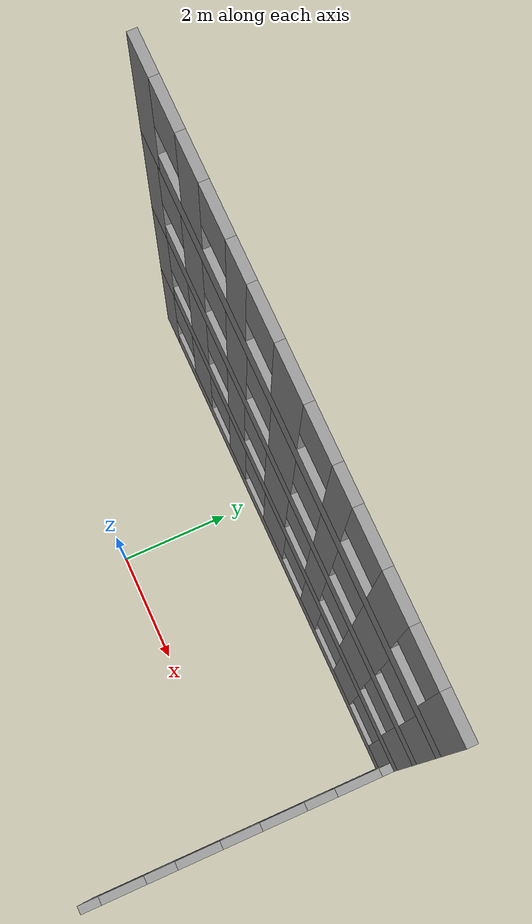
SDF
<sdf version="1.7">
 <model name="domitory">
  <pose>0.765108 -0.598707 0 0 -0 0</pose>
  <link name="Wall_11">
   <pose>-0 3.29118 2.5 0 -0 0</pose>
   <visual name="Wall_11_Visual_0">
    <pose>-4.4928 0 1.25 0 -0 0</pose>
    <geometry><box><size>0.612127 0.15 2.5</size></box></geometry>
    <material>
     <script><uri>file://media/materials/scripts/gazebo.material</uri><name>Gazebo/Grey</name></script>
     <ambient>1 1 1 1</ambient>
    </material>
    <meta><layer>1</layer></meta>
   </visual>
   <collision name="Wall_11_Collision_0">
    <geometry><box><size>0.612127 0.15 2.5</size></box></geometry>
    <pose>-4.4928 0 1.25 0 -0 0</pose>
   </collision>
   <visual name="Wall_11_Visual_1">
    <pose>0.306063 0 0.25 0 -0 0</pose>
    <geometry><box><size>8.9856 0.15 0.5</size></box></geometry>
    <material>
     <script><uri>file://media/materials/scripts/gazebo.material</uri><name>Gazebo/Grey</name></script>
     <ambient>1 1 1 1</ambient>
    </material>
    <meta><layer>1</layer></meta>
   </visual>
   <collision name="Wall_11_Collision_1">
    <geometry><box><size>8.9856 0.15 0.5</size></box></geometry>
    <pose>0.306063 0 0.25 0 -0 0</pose>
   </collision>
   <visual name="Wall_11_Visual_2">
    <pose>-3.02592 0 1.5 0 -0 0</pose>
    <geometry><box><size>0.721636 0.15 2</size></box></geometry>
    <material>
     <script><uri>file://media/materials/scripts/gazebo.material</uri><name>Gazebo/Grey</name></script>
     <ambient>1 1 1 1</ambient>
    </material>
    <meta><layer>1</layer></meta>
   </visual>
   <collision name="Wall_11_Collision_2">
    <geometry><box><size>0.721636 0.15 2</size></box></geometry>
    <pose>-3.02592 0 1.5 0 -0 0</pose>
   </collision>
   <visual name="Wall_11_Visual_3">
    <pose>-1.53052 0 1.5 0 -0 0</pose>
    <geometry><box><size>0.669165 0.15 2</size></box></geometry>
    <material>
     <script><uri>file://media/materials/scripts/gazebo.material</uri><name>Gazebo/Grey</name></script>
     <ambient>1 1 1 1</ambient>
    </material>
    <meta><layer>1</layer></meta>
   </visual>
   <collision name="Wall_11_Collision_3">
    <geometry><box><size>0.669165 0.15 2</size></box></geometry>
    <pose>-1.53052 0 1.5 0 -0 0</pose>
   </collision>
   <visual name="Wall_11_Visual_4">
    <pose>0.017351 0 1.5 0 -0 0</pose>
    <geometry><box><size>0.826576 0.15 2</size></box></geometry>
    <material>
     <script><uri>file://media/materials/scripts/gazebo.material</uri><name>Gazebo/Grey</name></script>
     <ambient>1 1 1 1</ambient>
    </material>
    <meta><layer>1</layer></meta>
   </visual>
   <collision name="Wall_11_Collision_4">
    <geometry><box><size>0.826576 0.15 2</size></box></geometry>
    <pose>0.017351 0 1.5 0 -0 0</pose>
   </collision>
   <visual name="Wall_11_Visual_5">
    <pose>1.51275 0 1.5 0 -0 0</pose>
    <geometry><box><size>0.564225 0.15 2</size></box></geometry>
    <material>
     <script><uri>file://media/materials/scripts/gazebo.material</uri><name>Gazebo/Grey</name></script>
     <ambient>1 1 1 1</ambient>
    </material>
    <meta><layer>1</layer></meta>
   </visual>
   <collision name="Wall_11_Collision_5">
    <geometry><box><size>0.564225 0.15 2</size></box></geometry>
    <pose>1.51275 0 1.5 0 -0 0</pose>
   </collision>
   <visual name="Wall_11_Visual_6">
    <pose>2.99066 0 1.5 0 -0 0</pose>
    <geometry><box><size>0.791596 0.15 2</size></box></geometry>
    <material>
     <script><uri>file://media/materials/scripts/gazebo.material</uri><name>Gazebo/Grey</name></script>
     <ambient>1 1 1 1</ambient>
    </material>
    <meta><layer>1</layer></meta>
   </visual>
   <collision name="Wall_11_Collision_6">
    <geometry><box><size>0.791596 0.15 2</size></box></geometry>
    <pose>2.99066 0 1.5 0 -0 0</pose>
   </collision>
   <visual name="Wall_11_Visual_7">
    <pose>4.49266 0 1.5 0 -0 0</pose>
    <geometry><box><size>0.612404 0.15 2</size></box></geometry>
    <material>
     <script><uri>file://media/materials/scripts/gazebo.material</uri><name>Gazebo/Grey</name></script>
     <ambient>1 1 1 1</ambient>
    </material>
    <meta><layer>1</layer></meta>
   </visual>
   <collision name="Wall_11_Collision_7">
    <geometry><box><size>0.612404 0.15 2</size></box></geometry>
    <pose>4.49266 0 1.5 0 -0 0</pose>
   </collision>
   <visual name="Wall_11_Visual_8">
    <pose>-3.78674 0 1.9 0 -0 0</pose>
    <geometry><box><size>0.8 0.15 1.2</size></box></geometry>
    <material>
     <script><uri>file://media/materials/scripts/gazebo.material</uri><name>Gazebo/Grey</name></script>
     <ambient>1 1 1 1</ambient>
    </material>
    <meta><layer>1</layer></meta>
   </visual>
   <collision name="Wall_11_Collision_8">
    <geometry><box><size>0.8 0.15 1.2</size></box></geometry>
    <pose>-3.78674 0 1.9 0 -0 0</pose>
   </collision>
   <visual name="Wall_11_Visual_9">
    <pose>-2.2651 0 1.9 0 -0 0</pose>
    <geometry><box><size>0.8 0.15 1.2</size></box></geometry>
    <material>
     <script><uri>file://media/materials/scripts/gazebo.material</uri><name>Gazebo/Grey</name></script>
     <ambient>1 1 1 1</ambient>
    </material>
    <meta><layer>1</layer></meta>
   </visual>
   <collision name="Wall_11_Collision_9">
    <geometry><box><size>0.8 0.15 1.2</size></box></geometry>
    <pose>-2.2651 0 1.9 0 -0 0</pose>
   </collision>
   <visual name="Wall_11_Visual_10">
    <pose>-0.795937 0 1.9 0 -0 0</pose>
    <geometry><box><size>0.8 0.15 1.2</size></box></geometry>
    <material>
     <script><uri>file://media/materials/scripts/gazebo.material</uri><name>Gazebo/Grey</name></script>
     <ambient>1 1 1 1</ambient>
    </material>
    <meta><layer>1</layer></meta>
   </visual>
   <collision name="Wall_11_Collision_10">
    <geometry><box><size>0.8 0.15 1.2</size></box></geometry>
    <pose>-0.795937 0 1.9 0 -0 0</pose>
   </collision>
   <visual name="Wall_11_Visual_11">
    <pose>0.830639 0 1.9 0 -0 0</pose>
    <geometry><box><size>0.8 0.15 1.2</size></box></geometry>
    <material>
     <script><uri>file://media/materials/scripts/gazebo.material</uri><name>Gazebo/Grey</name></script>
     <ambient>1 1 1 1</ambient>
    </material>
    <meta><layer>1</layer></meta>
   </visual>
   <collision name="Wall_11_Collision_11">
    <geometry><box><size>0.8 0.15 1.2</size></box></geometry>
    <pose>0.830639 0 1.9 0 -0 0</pose>
   </collision>
   <visual name="Wall_11_Visual_12">
    <pose>2.19486 0 1.9 0 -0 0</pose>
    <geometry><box><size>0.8 0.15 1.2</size></box></geometry>
    <material>
     <script><uri>file://media/materials/scripts/gazebo.material</uri><name>Gazebo/Grey</name></script>
     <ambient>1 1 1 1</ambient>
    </material>
    <meta><layer>1</layer></meta>
   </visual>
   <collision name="Wall_11_Collision_12">
    <geometry><box><size>0.8 0.15 1.2</size></box></geometry>
    <pose>2.19486 0 1.9 0 -0 0</pose>
   </collision>
   <visual name="Wall_11_Visual_13">
    <pose>3.78646 0 1.9 0 -0 0</pose>
    <geometry><box><size>0.8 0.15 1.2</size></box></geometry>
    <material>
     <script><uri>file://media/materials/scripts/gazebo.material</uri><name>Gazebo/Grey</name></script>
     <ambient>1 1 1 1</ambient>
    </material>
    <meta><layer>1</layer></meta>
   </visual>
   <collision name="Wall_11_Collision_13">
    <geometry><box><size>0.8 0.15 1.2</size></box></geometry>
    <pose>3.78646 0 1.9 0 -0 0</pose>
   </collision>
  </link>
  <link name="Wall_16">
   <pose>-0 3.29118 5 0 -0 0</pose>
   <visual name="Wall_16_Visual_0">
    <pose>-4.50103 0 1.25 0 -0 0</pose>
    <geometry><box><size>0.595673 0.15 2.5</size></box></geometry>
    <material>
     <script><uri>file://media/materials/scripts/gazebo.material</uri><name>Gazebo/Grey</name></script>
     <ambient>1 1 1 1</ambient>
    </material>
    <meta><layer>2</layer></meta>
   </visual>
   <collision name="Wall_16_Collision_0">
    <geometry><box><size>0.595673 0.15 2.5</size></box></geometry>
    <pose>-4.50103 0 1.25 0 -0 0</pose>
   </collision>
   <visual name="Wall_16_Visual_1">
    <pose>0.297837 0 0.25 0 -0 0</pose>
    <geometry><box><size>9.00206 0.15 0.5</size></box></geometry>
    <material>
     <script><uri>file://media/materials/scripts/gazebo.material</uri><name>Gazebo/Grey</name></script>
     <ambient>1 1 1 1</ambient>
    </material>
    <meta><layer>2</layer></meta>
   </visual>
   <collision name="Wall_16_Collision_1">
    <geometry><box><size>9.00206 0.15 0.5</size></box></geometry>
    <pose>0.297837 0 0.25 0 -0 0</pose>
   </collision>
   <visual name="Wall_16_Visual_2">
    <pose>-3.03079 0 1.5 0 -0 0</pose>
    <geometry><box><size>0.744807 0.15 2</size></box></geometry>
    <material>
     <script><uri>file://media/materials/scripts/gazebo.material</uri><name>Gazebo/Grey</name></script>
     <ambient>1 1 1 1</ambient>
    </material>
    <meta><layer>2</layer></meta>
   </visual>
   <collision name="Wall_16_Collision_2">
    <geometry><box><size>0.744807 0.15 2</size></box></geometry>
    <pose>-3.03079 0 1.5 0 -0 0</pose>
   </collision>
   <visual name="Wall_16_Visual_3">
    <pose>-1.50128 0 1.5 0 -0 0</pose>
    <geometry><box><size>0.714216 0.15 2</size></box></geometry>
    <material>
     <script><uri>file://media/materials/scripts/gazebo.material</uri><name>Gazebo/Grey</name></script>
     <ambient>1 1 1 1</ambient>
    </material>
    <meta><layer>2</layer></meta>
   </visual>
   <collision name="Wall_16_Collision_3">
    <geometry><box><size>0.714216 0.15 2</size></box></geometry>
    <pose>-1.50128 0 1.5 0 -0 0</pose>
   </collision>
   <visual name="Wall_16_Visual_4">
    <pose>0.058826 0 1.5 0 -0 0</pose>
    <geometry><box><size>0.805987 0.15 2</size></box></geometry>
    <material>
     <script><uri>file://media/materials/scripts/gazebo.material</uri><name>Gazebo/Grey</name></script>
     <ambient>1 1 1 1</ambient>
    </material>
    <meta><layer>2</layer></meta>
   </visual>
   <collision name="Wall_16_Collision_4">
    <geometry><box><size>0.805987 0.15 2</size></box></geometry>
    <pose>0.058826 0 1.5 0 -0 0</pose>
   </collision>
   <visual name="Wall_16_Visual_5">
    <pose>1.5348 0 1.5 0 -0 0</pose>
    <geometry><box><size>0.54597 0.15 2</size></box></geometry>
    <material>
     <script><uri>file://media/materials/scripts/gazebo.material</uri><name>Gazebo/Grey</name></script>
     <ambient>1 1 1 1</ambient>
    </material>
    <meta><layer>2</layer></meta>
   </visual>
   <collision name="Wall_16_Collision_5">
    <geometry><box><size>0.54597 0.15 2</size></box></geometry>
    <pose>1.5348 0 1.5 0 -0 0</pose>
   </collision>
   <visual name="Wall_16_Visual_6">
    <pose>3.00313 0 1.5 0 -0 0</pose>
    <geometry><box><size>0.790692 0.15 2</size></box></geometry>
    <material>
     <script><uri>file://media/materials/scripts/gazebo.material</uri><name>Gazebo/Grey</name></script>
     <ambient>1 1 1 1</ambient>
    </material>
    <meta><layer>2</layer></meta>
   </visual>
   <collision name="Wall_16_Collision_6">
    <geometry><box><size>0.790692 0.15 2</size></box></geometry>
    <pose>3.00313 0 1.5 0 -0 0</pose>
   </collision>
   <visual name="Wall_16_Visual_7">
    <pose>4.49867 0 1.5 0 -0 0</pose>
    <geometry><box><size>0.600383 0.15 2</size></box></geometry>
    <material>
     <script><uri>file://media/materials/scripts/gazebo.material</uri><name>Gazebo/Grey</name></script>
     <ambient>1 1 1 1</ambient>
    </material>
    <meta><layer>2</layer></meta>
   </visual>
   <collision name="Wall_16_Collision_7">
    <geometry><box><size>0.600383 0.15 2</size></box></geometry>
    <pose>4.49867 0 1.5 0 -0 0</pose>
   </collision>
   <visual name="Wall_16_Visual_8">
    <pose>-3.80319 0 1.9 0 -0 0</pose>
    <geometry><box><size>0.8 0.15 1.2</size></box></geometry>
    <material>
     <script><uri>file://media/materials/scripts/gazebo.material</uri><name>Gazebo/Grey</name></script>
     <ambient>1 1 1 1</ambient>
    </material>
    <meta><layer>2</layer></meta>
   </visual>
   <collision name="Wall_16_Collision_8">
    <geometry><box><size>0.8 0.15 1.2</size></box></geometry>
    <pose>-3.80319 0 1.9 0 -0 0</pose>
   </collision>
   <visual name="Wall_16_Visual_9">
    <pose>-2.25838 0 1.9 0 -0 0</pose>
    <geometry><box><size>0.8 0.15 1.2</size></box></geometry>
    <material>
     <script><uri>file://media/materials/scripts/gazebo.material</uri><name>Gazebo/Grey</name></script>
     <ambient>1 1 1 1</ambient>
    </material>
    <meta><layer>2</layer></meta>
   </visual>
   <collision name="Wall_16_Collision_9">
    <geometry><box><size>0.8 0.15 1.2</size></box></geometry>
    <pose>-2.25838 0 1.9 0 -0 0</pose>
   </collision>
   <visual name="Wall_16_Visual_10">
    <pose>-0.744168 0 1.9 0 -0 0</pose>
    <geometry><box><size>0.8 0.15 1.2</size></box></geometry>
    <material>
     <script><uri>file://media/materials/scripts/gazebo.material</uri><name>Gazebo/Grey</name></script>
     <ambient>1 1 1 1</ambient>
    </material>
    <meta><layer>2</layer></meta>
   </visual>
   <collision name="Wall_16_Collision_10">
    <geometry><box><size>0.8 0.15 1.2</size></box></geometry>
    <pose>-0.744168 0 1.9 0 -0 0</pose>
   </collision>
   <visual name="Wall_16_Visual_11">
    <pose>0.861819 0 1.9 0 -0 0</pose>
    <geometry><box><size>0.8 0.15 1.2</size></box></geometry>
    <material>
     <script><uri>file://media/materials/scripts/gazebo.material</uri><name>Gazebo/Grey</name></script>
     <ambient>1 1 1 1</ambient>
    </material>
    <meta><layer>2</layer></meta>
   </visual>
   <collision name="Wall_16_Collision_11">
    <geometry><box><size>0.8 0.15 1.2</size></box></geometry>
    <pose>0.861819 0 1.9 0 -0 0</pose>
   </collision>
   <visual name="Wall_16_Visual_12">
    <pose>2.20779 0 1.9 0 -0 0</pose>
    <geometry><box><size>0.8 0.15 1.2</size></box></geometry>
    <material>
     <script><uri>file://media/materials/scripts/gazebo.material</uri><name>Gazebo/Grey</name></script>
     <ambient>1 1 1 1</ambient>
    </material>
    <meta><layer>2</layer></meta>
   </visual>
   <collision name="Wall_16_Collision_12">
    <geometry><box><size>0.8 0.15 1.2</size></box></geometry>
    <pose>2.20779 0 1.9 0 -0 0</pose>
   </collision>
   <visual name="Wall_16_Visual_13">
    <pose>3.79848 0 1.9 0 -0 0</pose>
    <geometry><box><size>0.8 0.15 1.2</size></box></geometry>
    <material>
     <script><uri>file://media/materials/scripts/gazebo.material</uri><name>Gazebo/Grey</name></script>
     <ambient>1 1 1 1</ambient>
    </material>
    <meta><layer>2</layer></meta>
   </visual>
   <collision name="Wall_16_Collision_13">
    <geometry><box><size>0.8 0.15 1.2</size></box></geometry>
    <pose>3.79848 0 1.9 0 -0 0</pose>
   </collision>
  </link>
  <link name="Wall_21">
   <pose>-0 3.29118 7.5 0 -0 0</pose>
   <visual name="Wall_21_Visual_0">
    <pose>-4.45797 0 1.25 0 -0 0</pose>
    <geometry><box><size>0.681784 0.15 2.5</size></box></geometry>
    <material>
     <script><uri>file://media/materials/scripts/gazebo.material</uri><name>Gazebo/Grey</name></script>
     <ambient>1 1 1 1</ambient>
    </material>
    <meta><layer>3</layer></meta>
   </visual>
   <collision name="Wall_21_Collision_0">
    <geometry><box><size>0.681784 0.15 2.5</size></box></geometry>
    <pose>-4.45797 0 1.25 0 -0 0</pose>
   </collision>
   <visual name="Wall_21_Visual_1">
    <pose>0.340892 0 0.25 0 -0 0</pose>
    <geometry><box><size>8.91594 0.15 0.5</size></box></geometry>
    <material>
     <script><uri>file://media/materials/scripts/gazebo.material</uri><name>Gazebo/Grey</name></script>
     <ambient>1 1 1 1</ambient>
    </material>
    <meta><layer>3</layer></meta>
   </visual>
   <collision name="Wall_21_Collision_1">
    <geometry><box><size>8.91594 0.15 0.5</size></box></geometry>
    <pose>0.340892 0 0.25 0 -0 0</pose>
   </collision>
   <visual name="Wall_21_Visual_2">
    <pose>-2.96107 0 1.5 0 -0 0</pose>
    <geometry><box><size>0.712027 0.15 2</size></box></geometry>
    <material>
     <script><uri>file://media/materials/scripts/gazebo.material</uri><name>Gazebo/Grey</name></script>
     <ambient>1 1 1 1</ambient>
    </material>
    <meta><layer>3</layer></meta>
   </visual>
   <collision name="Wall_21_Collision_2">
    <geometry><box><size>0.712027 0.15 2</size></box></geometry>
    <pose>-2.96107 0 1.5 0 -0 0</pose>
   </collision>
   <visual name="Wall_21_Visual_3">
    <pose>-1.49556 0 1.5 0 -0 0</pose>
    <geometry><box><size>0.618979 0.15 2</size></box></geometry>
    <material>
     <script><uri>file://media/materials/scripts/gazebo.material</uri><name>Gazebo/Grey</name></script>
     <ambient>1 1 1 1</ambient>
    </material>
    <meta><layer>3</layer></meta>
   </visual>
   <collision name="Wall_21_Collision_3">
    <geometry><box><size>0.618979 0.15 2</size></box></geometry>
    <pose>-1.49556 0 1.5 0 -0 0</pose>
   </collision>
   <visual name="Wall_21_Visual_4">
    <pose>0.028095 0 1.5 0 -0 0</pose>
    <geometry><box><size>0.828337 0.15 2</size></box></geometry>
    <material>
     <script><uri>file://media/materials/scripts/gazebo.material</uri><name>Gazebo/Grey</name></script>
     <ambient>1 1 1 1</ambient>
    </material>
    <meta><layer>3</layer></meta>
   </visual>
   <collision name="Wall_21_Collision_4">
    <geometry><box><size>0.828337 0.15 2</size></box></geometry>
    <pose>0.028095 0 1.5 0 -0 0</pose>
   </collision>
   <visual name="Wall_21_Visual_5">
    <pose>1.51686 0 1.5 0 -0 0</pose>
    <geometry><box><size>0.549193 0.15 2</size></box></geometry>
    <material>
     <script><uri>file://media/materials/scripts/gazebo.material</uri><name>Gazebo/Grey</name></script>
     <ambient>1 1 1 1</ambient>
    </material>
    <meta><layer>3</layer></meta>
   </visual>
   <collision name="Wall_21_Collision_5">
    <geometry><box><size>0.549193 0.15 2</size></box></geometry>
    <pose>1.51686 0 1.5 0 -0 0</pose>
   </collision>
   <visual name="Wall_21_Visual_6">
    <pose>2.94747 0 1.5 0 -0 0</pose>
    <geometry><box><size>0.712027 0.15 2</size></box></geometry>
    <material>
     <script><uri>file://media/materials/scripts/gazebo.material</uri><name>Gazebo/Grey</name></script>
     <ambient>1 1 1 1</ambient>
    </material>
    <meta><layer>3</layer></meta>
   </visual>
   <collision name="Wall_21_Collision_6">
    <geometry><box><size>0.712027 0.15 2</size></box></geometry>
    <pose>2.94747 0 1.5 0 -0 0</pose>
   </collision>
   <visual name="Wall_21_Visual_7">
    <pose>4.45117 0 1.5 0 -0 0</pose>
    <geometry><box><size>0.69538 0.15 2</size></box></geometry>
    <material>
     <script><uri>file://media/materials/scripts/gazebo.material</uri><name>Gazebo/Grey</name></script>
     <ambient>1 1 1 1</ambient>
    </material>
    <meta><layer>3</layer></meta>
   </visual>
   <collision name="Wall_21_Collision_7">
    <geometry><box><size>0.69538 0.15 2</size></box></geometry>
    <pose>4.45117 0 1.5 0 -0 0</pose>
   </collision>
   <visual name="Wall_21_Visual_8">
    <pose>-3.71708 0 1.9 0 -0 0</pose>
    <geometry><box><size>0.8 0.15 1.2</size></box></geometry>
    <material>
     <script><uri>file://media/materials/scripts/gazebo.material</uri><name>Gazebo/Grey</name></script>
     <ambient>1 1 1 1</ambient>
    </material>
    <meta><layer>3</layer></meta>
   </visual>
   <collision name="Wall_21_Collision_8">
    <geometry><box><size>0.8 0.15 1.2</size></box></geometry>
    <pose>-3.71708 0 1.9 0 -0 0</pose>
   </collision>
   <visual name="Wall_21_Visual_9">
    <pose>-2.20505 0 1.9 0 -0 0</pose>
    <geometry><box><size>0.8 0.15 1.2</size></box></geometry>
    <material>
     <script><uri>file://media/materials/scripts/gazebo.material</uri><name>Gazebo/Grey</name></script>
     <ambient>1 1 1 1</ambient>
    </material>
    <meta><layer>3</layer></meta>
   </visual>
   <collision name="Wall_21_Collision_9">
    <geometry><box><size>0.8 0.15 1.2</size></box></geometry>
    <pose>-2.20505 0 1.9 0 -0 0</pose>
   </collision>
   <visual name="Wall_21_Visual_10">
    <pose>-0.786074 0 1.9 0 -0 0</pose>
    <geometry><box><size>0.8 0.15 1.2</size></box></geometry>
    <material>
     <script><uri>file://media/materials/scripts/gazebo.material</uri><name>Gazebo/Grey</name></script>
     <ambient>1 1 1 1</ambient>
    </material>
    <meta><layer>3</layer></meta>
   </visual>
   <collision name="Wall_21_Collision_10">
    <geometry><box><size>0.8 0.15 1.2</size></box></geometry>
    <pose>-0.786074 0 1.9 0 -0 0</pose>
   </collision>
   <visual name="Wall_21_Visual_11">
    <pose>0.842263 0 1.9 0 -0 0</pose>
    <geometry><box><size>0.8 0.15 1.2</size></box></geometry>
    <material>
     <script><uri>file://media/materials/scripts/gazebo.material</uri><name>Gazebo/Grey</name></script>
     <ambient>1 1 1 1</ambient>
    </material>
    <meta><layer>3</layer></meta>
   </visual>
   <collision name="Wall_21_Collision_11">
    <geometry><box><size>0.8 0.15 1.2</size></box></geometry>
    <pose>0.842263 0 1.9 0 -0 0</pose>
   </collision>
   <visual name="Wall_21_Visual_12">
    <pose>2.19146 0 1.9 0 -0 0</pose>
    <geometry><box><size>0.8 0.15 1.2</size></box></geometry>
    <material>
     <script><uri>file://media/materials/scripts/gazebo.material</uri><name>Gazebo/Grey</name></script>
     <ambient>1 1 1 1</ambient>
    </material>
    <meta><layer>3</layer></meta>
   </visual>
   <collision name="Wall_21_Collision_12">
    <geometry><box><size>0.8 0.15 1.2</size></box></geometry>
    <pose>2.19146 0 1.9 0 -0 0</pose>
   </collision>
   <visual name="Wall_21_Visual_13">
    <pose>3.70348 0 1.9 0 -0 0</pose>
    <geometry><box><size>0.8 0.15 1.2</size></box></geometry>
    <material>
     <script><uri>file://media/materials/scripts/gazebo.material</uri><name>Gazebo/Grey</name></script>
     <ambient>1 1 1 1</ambient>
    </material>
    <meta><layer>3</layer></meta>
   </visual>
   <collision name="Wall_21_Collision_13">
    <geometry><box><size>0.8 0.15 1.2</size></box></geometry>
    <pose>3.70348 0 1.9 0 -0 0</pose>
   </collision>
  </link>
  <link name="Wall_5">
   <pose>-0 3.29118 0 0 -0 0</pose>
   <visual name="Wall_5_Visual_0">
    <pose>-4.51732 0 1.25 0 -0 0</pose>
    <geometry><box><size>0.563111 0.15 2.5</size></box></geometry>
    <material>
     <script><uri>file://media/materials/scripts/gazebo.material</uri><name>Gazebo/Grey</name></script>
     <ambient>1 1 1 1</ambient>
    </material>
    <meta><layer>0</layer></meta>
   </visual>
   <collision name="Wall_5_Collision_0">
    <geometry><box><size>0.563111 0.15 2.5</size></box></geometry>
    <pose>-4.51732 0 1.25 0 -0 0</pose>
   </collision>
   <visual name="Wall_5_Visual_1">
    <pose>0.281556 0 0.25 0 -0 0</pose>
    <geometry><box><size>9.03464 0.15 0.5</size></box></geometry>
    <material>
     <script><uri>file://media/materials/scripts/gazebo.material</uri><name>Gazebo/Grey</name></script>
     <ambient>1 1 1 1</ambient>
    </material>
    <meta><layer>0</layer></meta>
   </visual>
   <collision name="Wall_5_Collision_1">
    <geometry><box><size>9.03464 0.15 0.5</size></box></geometry>
    <pose>0.281556 0 0.25 0 -0 0</pose>
   </collision>
   <visual name="Wall_5_Visual_2">
    <pose>-3.04128 0 1.5 0 -0 0</pose>
    <geometry><box><size>0.788972 0.15 2</size></box></geometry>
    <material>
     <script><uri>file://media/materials/scripts/gazebo.material</uri><name>Gazebo/Grey</name></script>
     <ambient>1 1 1 1</ambient>
    </material>
    <meta><layer>0</layer></meta>
   </visual>
   <collision name="Wall_5_Collision_2">
    <geometry><box><size>0.788972 0.15 2</size></box></geometry>
    <pose>-3.04128 0 1.5 0 -0 0</pose>
   </collision>
   <visual name="Wall_5_Visual_3">
    <pose>-1.49253 0 1.5 0 -0 0</pose>
    <geometry><box><size>0.708518 0.15 2</size></box></geometry>
    <material>
     <script><uri>file://media/materials/scripts/gazebo.material</uri><name>Gazebo/Grey</name></script>
     <ambient>1 1 1 1</ambient>
    </material>
    <meta><layer>0</layer></meta>
   </visual>
   <collision name="Wall_5_Collision_3">
    <geometry><box><size>0.708518 0.15 2</size></box></geometry>
    <pose>-1.49253 0 1.5 0 -0 0</pose>
   </collision>
   <visual name="Wall_5_Visual_4">
    <pose>0.086383 0 1.5 0 -0 0</pose>
    <geometry><box><size>0.849313 0.15 2</size></box></geometry>
    <material>
     <script><uri>file://media/materials/scripts/gazebo.material</uri><name>Gazebo/Grey</name></script>
     <ambient>1 1 1 1</ambient>
    </material>
    <meta><layer>0</layer></meta>
   </visual>
   <collision name="Wall_5_Collision_4">
    <geometry><box><size>0.849313 0.15 2</size></box></geometry>
    <pose>0.086383 0 1.5 0 -0 0</pose>
   </collision>
   <visual name="Wall_5_Visual_5">
    <pose>1.62507 0 1.5 0 -0 0</pose>
    <geometry><box><size>0.628064 0.15 2</size></box></geometry>
    <material>
     <script><uri>file://media/materials/scripts/gazebo.material</uri><name>Gazebo/Grey</name></script>
     <ambient>1 1 1 1</ambient>
    </material>
    <meta><layer>0</layer></meta>
   </visual>
   <collision name="Wall_5_Collision_5">
    <geometry><box><size>0.628064 0.15 2</size></box></geometry>
    <pose>1.62507 0 1.5 0 -0 0</pose>
   </collision>
   <visual name="Wall_5_Visual_6">
    <pose>3.08331 0 1.5 0 -0 0</pose>
    <geometry><box><size>0.688404 0.15 2</size></box></geometry>
    <material>
     <script><uri>file://media/materials/scripts/gazebo.material</uri><name>Gazebo/Grey</name></script>
     <ambient>1 1 1 1</ambient>
    </material>
    <meta><layer>0</layer></meta>
   </visual>
   <collision name="Wall_5_Collision_6">
    <geometry><box><size>0.688404 0.15 2</size></box></geometry>
    <pose>3.08331 0 1.5 0 -0 0</pose>
   </collision>
   <visual name="Wall_5_Visual_7">
    <pose>4.51319 0 1.5 0 -0 0</pose>
    <geometry><box><size>0.571368 0.15 2</size></box></geometry>
    <material>
     <script><uri>file://media/materials/scripts/gazebo.material</uri><name>Gazebo/Grey</name></script>
     <ambient>1 1 1 1</ambient>
    </material>
    <meta><layer>0</layer></meta>
   </visual>
   <collision name="Wall_5_Collision_7">
    <geometry><box><size>0.571368 0.15 2</size></box></geometry>
    <pose>4.51319 0 1.5 0 -0 0</pose>
   </collision>
   <visual name="Wall_5_Visual_8">
    <pose>-3.83576 0 1.9 0 -0 0</pose>
    <geometry><box><size>0.8 0.15 1.2</size></box></geometry>
    <material>
     <script><uri>file://media/materials/scripts/gazebo.material</uri><name>Gazebo/Grey</name></script>
     <ambient>1 1 1 1</ambient>
    </material>
    <meta><layer>0</layer></meta>
   </visual>
   <collision name="Wall_5_Collision_8">
    <geometry><box><size>0.8 0.15 1.2</size></box></geometry>
    <pose>-3.83576 0 1.9 0 -0 0</pose>
   </collision>
   <visual name="Wall_5_Visual_9">
    <pose>-2.24679 0 1.9 0 -0 0</pose>
    <geometry><box><size>0.8 0.15 1.2</size></box></geometry>
    <material>
     <script><uri>file://media/materials/scripts/gazebo.material</uri><name>Gazebo/Grey</name></script>
     <ambient>1 1 1 1</ambient>
    </material>
    <meta><layer>0</layer></meta>
   </visual>
   <collision name="Wall_5_Collision_9">
    <geometry><box><size>0.8 0.15 1.2</size></box></geometry>
    <pose>-2.24679 0 1.9 0 -0 0</pose>
   </collision>
   <visual name="Wall_5_Visual_10">
    <pose>-0.738274 0 1.9 0 -0 0</pose>
    <geometry><box><size>0.8 0.15 1.2</size></box></geometry>
    <material>
     <script><uri>file://media/materials/scripts/gazebo.material</uri><name>Gazebo/Grey</name></script>
     <ambient>1 1 1 1</ambient>
    </material>
    <meta><layer>0</layer></meta>
   </visual>
   <collision name="Wall_5_Collision_10">
    <geometry><box><size>0.8 0.15 1.2</size></box></geometry>
    <pose>-0.738274 0 1.9 0 -0 0</pose>
   </collision>
   <visual name="Wall_5_Visual_11">
    <pose>0.911039 0 1.9 0 -0 0</pose>
    <geometry><box><size>0.8 0.15 1.2</size></box></geometry>
    <material>
     <script><uri>file://media/materials/scripts/gazebo.material</uri><name>Gazebo/Grey</name></script>
     <ambient>1 1 1 1</ambient>
    </material>
    <meta><layer>0</layer></meta>
   </visual>
   <collision name="Wall_5_Collision_11">
    <geometry><box><size>0.8 0.15 1.2</size></box></geometry>
    <pose>0.911039 0 1.9 0 -0 0</pose>
   </collision>
   <visual name="Wall_5_Visual_12">
    <pose>2.3391 0 1.9 0 -0 0</pose>
    <geometry><box><size>0.8 0.15 1.2</size></box></geometry>
    <material>
     <script><uri>file://media/materials/scripts/gazebo.material</uri><name>Gazebo/Grey</name></script>
     <ambient>1 1 1 1</ambient>
    </material>
    <meta><layer>0</layer></meta>
   </visual>
   <collision name="Wall_5_Collision_12">
    <geometry><box><size>0.8 0.15 1.2</size></box></geometry>
    <pose>2.3391 0 1.9 0 -0 0</pose>
   </collision>
   <visual name="Wall_5_Visual_13">
    <pose>3.82751 0 1.9 0 -0 0</pose>
    <geometry><box><size>0.8 0.15 1.2</size></box></geometry>
    <material>
     <script><uri>file://media/materials/scripts/gazebo.material</uri><name>Gazebo/Grey</name></script>
     <ambient>1 1 1 1</ambient>
    </material>
    <meta><layer>0</layer></meta>
   </visual>
   <collision name="Wall_5_Collision_13">
    <geometry><box><size>0.8 0.15 1.2</size></box></geometry>
    <pose>3.82751 0 1.9 0 -0 0</pose>
   </collision>
  </link>
  <link name="Wall_6">
   <pose>4.72386 0.511293 0 0 -0 -1.5708</pose>
   <visual name="Wall_6_Visual_0">
    <pose>-2.68616 0 1.25 0 -0 0</pose>
    <geometry><box><size>0.37768 0.15 2.5</size></box></geometry>
    <material>
     <script><uri>file://media/materials/scripts/gazebo.material</uri><name>Gazebo/Grey</name></script>
     <ambient>1 1 1 1</ambient>
    </material>
    <meta><layer>0</layer></meta>
   </visual>
   <collision name="Wall_6_Collision_0">
    <geometry><box><size>0.37768 0.15 2.5</size></box></geometry>
    <pose>-2.68616 0 1.25 0 -0 0</pose>
   </collision>
   <visual name="Wall_6_Visual_1">
    <pose>0.18884 0 0.25 0 -0 0</pose>
    <geometry><box><size>5.37232 0.15 0.5</size></box></geometry>
    <material>
     <script><uri>file://media/materials/scripts/gazebo.material</uri><name>Gazebo/Grey</name></script>
     <ambient>1 1 1 1</ambient>
    </material>
    <meta><layer>0</layer></meta>
   </visual>
   <collision name="Wall_6_Collision_1">
    <geometry><box><size>5.37232 0.15 0.5</size></box></geometry>
    <pose>0.18884 0 0.25 0 -0 0</pose>
   </collision>
   <visual name="Wall_6_Visual_2">
    <pose>-1.42352 0 1.5 0 -0 0</pose>
    <geometry><box><size>0.547609 0.15 2</size></box></geometry>
    <material>
     <script><uri>file://media/materials/scripts/gazebo.material</uri><name>Gazebo/Grey</name></script>
     <ambient>1 1 1 1</ambient>
    </material>
    <meta><layer>0</layer></meta>
   </visual>
   <collision name="Wall_6_Collision_2">
    <geometry><box><size>0.547609 0.15 2</size></box></geometry>
    <pose>-1.42352 0 1.5 0 -0 0</pose>
   </collision>
   <visual name="Wall_6_Visual_3">
    <pose>0.004548 0 1.5 0 -0 0</pose>
    <geometry><box><size>0.708518 0.15 2</size></box></geometry>
    <material>
     <script><uri>file://media/materials/scripts/gazebo.material</uri><name>Gazebo/Grey</name></script>
     <ambient>1 1 1 1</ambient>
    </material>
    <meta><layer>0</layer></meta>
   </visual>
   <collision name="Wall_6_Collision_3">
    <geometry><box><size>0.708518 0.15 2</size></box></geometry>
    <pose>0.004548 0 1.5 0 -0 0</pose>
   </collision>
   <visual name="Wall_6_Visual_4">
    <pose>1.43261 0 1.5 0 -0 0</pose>
    <geometry><box><size>0.547609 0.15 2</size></box></geometry>
    <material>
     <script><uri>file://media/materials/scripts/gazebo.material</uri><name>Gazebo/Grey</name></script>
     <ambient>1 1 1 1</ambient>
    </material>
    <meta><layer>0</layer></meta>
   </visual>
   <collision name="Wall_6_Collision_4">
    <geometry><box><size>0.547609 0.15 2</size></box></geometry>
    <pose>1.43261 0 1.5 0 -0 0</pose>
   </collision>
   <visual name="Wall_6_Visual_5">
    <pose>2.69071 0 1.5 0 -0 0</pose>
    <geometry><box><size>0.368583 0.15 2</size></box></geometry>
    <material>
     <script><uri>file://media/materials/scripts/gazebo.material</uri><name>Gazebo/Grey</name></script>
     <ambient>1 1 1 1</ambient>
    </material>
    <meta><layer>0</layer></meta>
   </visual>
   <collision name="Wall_6_Collision_5">
    <geometry><box><size>0.368583 0.15 2</size></box></geometry>
    <pose>2.69071 0 1.5 0 -0 0</pose>
   </collision>
   <visual name="Wall_6_Visual_6">
    <pose>-2.09732 0 1.9 0 -0 0</pose>
    <geometry><box><size>0.8 0.15 1.2</size></box></geometry>
    <material>
     <script><uri>file://media/materials/scripts/gazebo.material</uri><name>Gazebo/Grey</name></script>
     <ambient>1 1 1 1</ambient>
    </material>
    <meta><layer>0</layer></meta>
   </visual>
   <collision name="Wall_6_Collision_6">
    <geometry><box><size>0.8 0.15 1.2</size></box></geometry>
    <pose>-2.09732 0 1.9 0 -0 0</pose>
   </collision>
   <visual name="Wall_6_Visual_7">
    <pose>-0.74971 0 1.9 0 -0 0</pose>
    <geometry><box><size>0.8 0.15 1.2</size></box></geometry>
    <material>
     <script><uri>file://media/materials/scripts/gazebo.material</uri><name>Gazebo/Grey</name></script>
     <ambient>1 1 1 1</ambient>
    </material>
    <meta><layer>0</layer></meta>
   </visual>
   <collision name="Wall_6_Collision_7">
    <geometry><box><size>0.8 0.15 1.2</size></box></geometry>
    <pose>-0.74971 0 1.9 0 -0 0</pose>
   </collision>
   <visual name="Wall_6_Visual_8">
    <pose>0.758807 0 1.9 0 -0 0</pose>
    <geometry><box><size>0.8 0.15 1.2</size></box></geometry>
    <material>
     <script><uri>file://media/materials/scripts/gazebo.material</uri><name>Gazebo/Grey</name></script>
     <ambient>1 1 1 1</ambient>
    </material>
    <meta><layer>0</layer></meta>
   </visual>
   <collision name="Wall_6_Collision_8">
    <geometry><box><size>0.8 0.15 1.2</size></box></geometry>
    <pose>0.758807 0 1.9 0 -0 0</pose>
   </collision>
   <visual name="Wall_6_Visual_9">
    <pose>2.10642 0 1.9 0 -0 0</pose>
    <geometry><box><size>0.8 0.15 1.2</size></box></geometry>
    <material>
     <script><uri>file://media/materials/scripts/gazebo.material</uri><name>Gazebo/Grey</name></script>
     <ambient>1 1 1 1</ambient>
    </material>
    <meta><layer>0</layer></meta>
   </visual>
   <collision name="Wall_6_Collision_9">
    <geometry><box><size>0.8 0.15 1.2</size></box></geometry>
    <pose>2.10642 0 1.9 0 -0 0</pose>
   </collision>
  </link>
  <static>1</static>
 </model>
</sdf>
